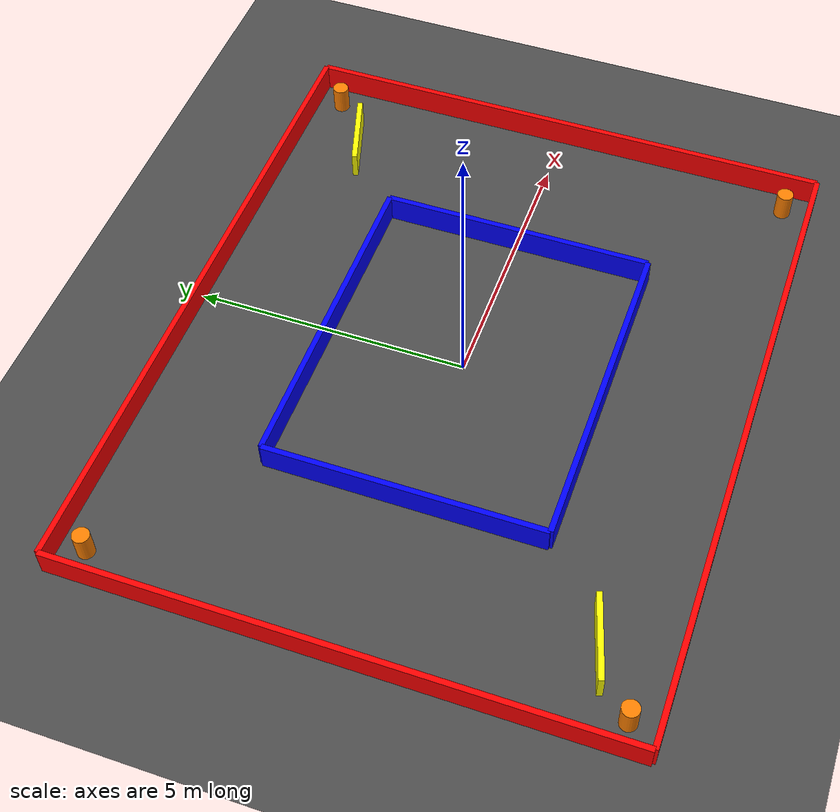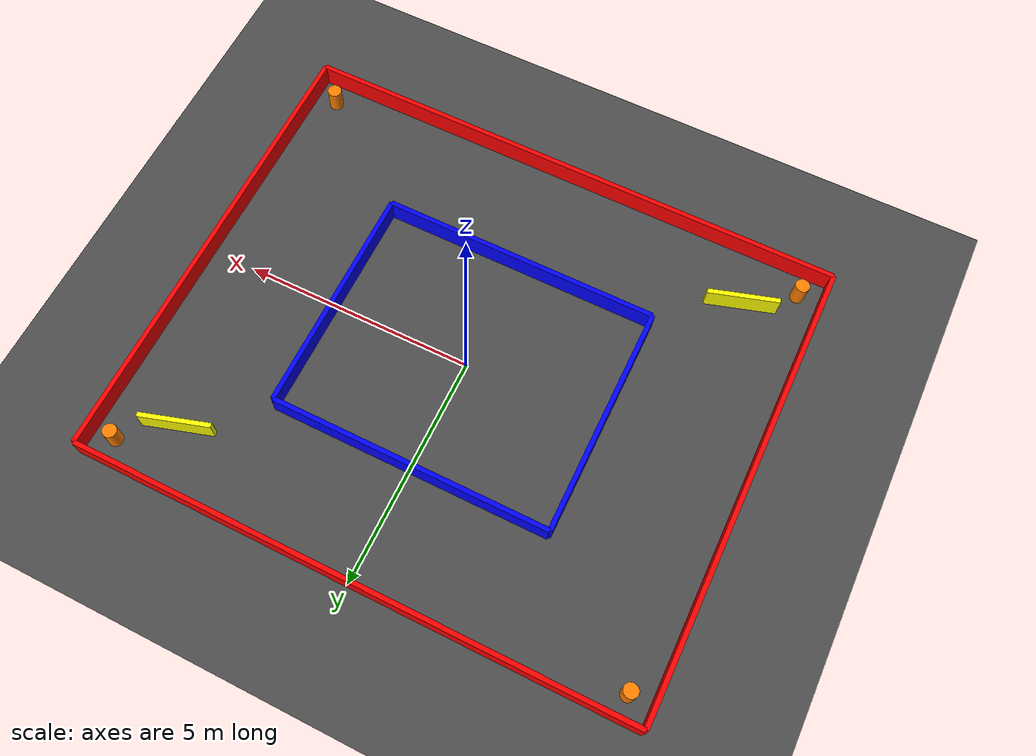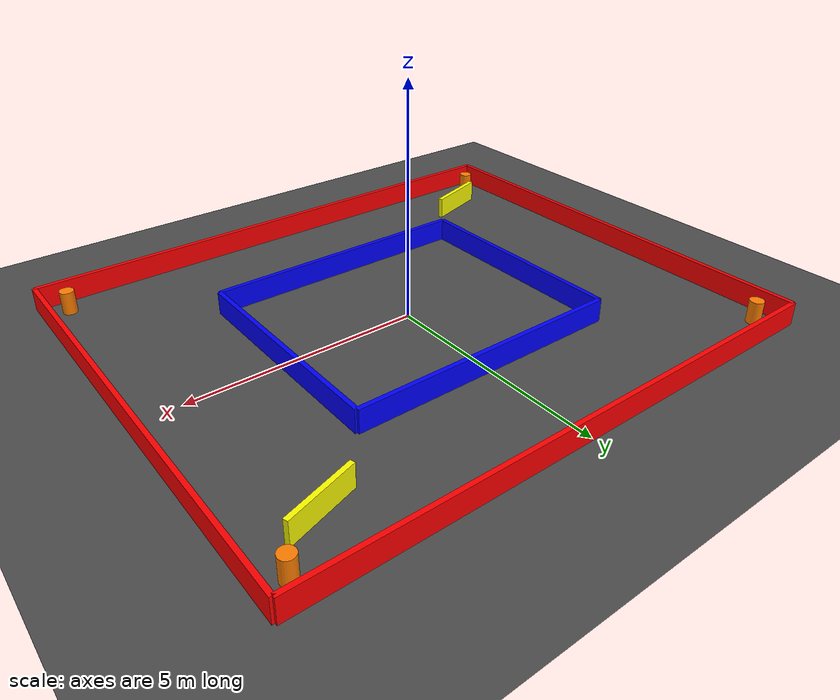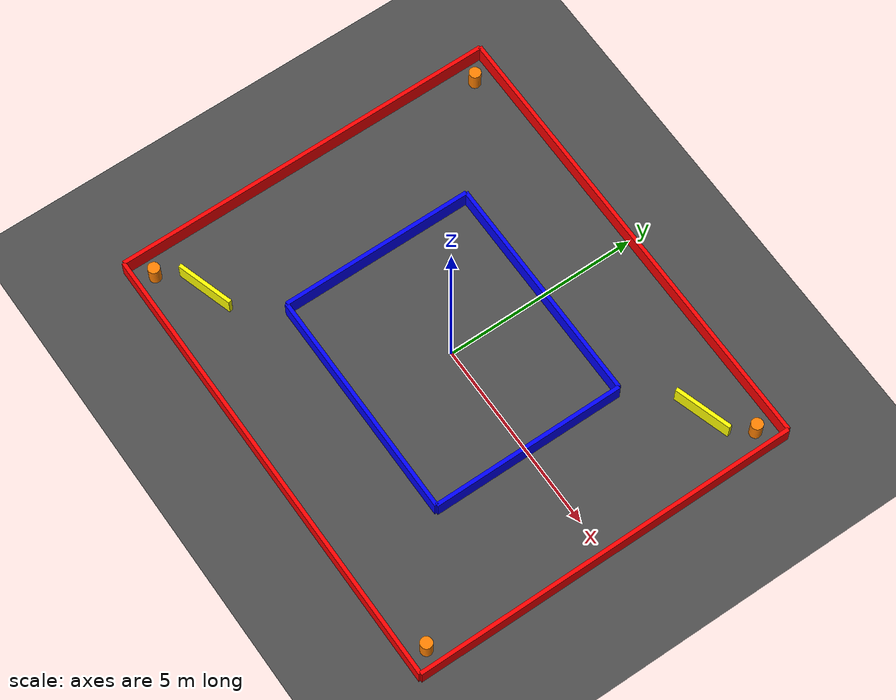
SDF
<?xml version="1.0" ?>
<sdf version="1.8">
  <world name="f1_circuit">

    <!-- Physics -->
    <physics name="1ms" type="ignored">
      <max_step_size>0.001</max_step_size>
      <real_time_factor>1.0</real_time_factor>
    </physics>

    <!-- Plugins -->
    <plugin filename="gz-sim-physics-system" name="gz::sim::systems::Physics"/>
    <plugin filename="gz-sim-user-commands-system" name="gz::sim::systems::UserCommands"/>
    <plugin filename="gz-sim-scene-broadcaster-system" name="gz::sim::systems::SceneBroadcaster"/>
    <plugin filename="gz-sim-sensors-system" name="gz::sim::systems::Sensors">
      <render_engine>ogre2</render_engine>
    </plugin>
    <plugin filename="gz-sim-imu-system" name="gz::sim::systems::Imu"/>
    <plugin filename="gz-sim-contact-system" name="gz::sim::systems::Contact"/>

    <!-- Lighting -->
    <light type="directional" name="sun">
      <cast_shadows>true</cast_shadows>
      <pose>0 0 10 0 0 0</pose>
      <diffuse>0.8 0.8 0.8 1</diffuse>
      <specular>0.2 0.2 0.2 1</specular>
      <direction>-0.5 0.1 -0.9</direction>
    </light>

    <!-- Ground Plane (Track surface) -->
    <model name="ground_plane">
      <static>true</static>
      <link name="link">
        <collision name="collision">
          <geometry>
            <plane>
              <normal>0 0 1</normal>
              <size>100 100</size>
            </plane>
          </geometry>
        </collision>
        <visual name="visual">
          <geometry>
            <plane>
              <normal>0 0 1</normal>
              <size>100 100</size>
            </plane>
          </geometry>
          <material>
            <ambient>0.3 0.3 0.3 1</ambient>
            <diffuse>0.3 0.3 0.3 1</diffuse>
          </material>
        </visual>
      </link>
    </model>

    <!-- F1 서킷 외곽 벽 -->

    <!-- 외곽 트랙 - 직선 구간 1 (상단) -->
    <model name="outer_straight_top">
      <static>true</static>
      <pose>0 5 0.25 0 0 0</pose>
      <link name="link">
        <collision name="collision">
          <geometry><box><size>12 0.1 0.5</size></box></geometry>
        </collision>
        <visual name="visual">
          <geometry><box><size>12 0.1 0.5</size></box></geometry>
          <material>
            <ambient>1 0 0 1</ambient>
            <diffuse>1 0 0 1</diffuse>
          </material>
        </visual>
      </link>
    </model>

    <!-- 외곽 - 직선 구간 2 (하단) -->
    <model name="outer_straight_bottom">
      <static>true</static>
      <pose>0 -5 0.25 0 0 0</pose>
      <link name="link">
        <collision name="collision">
          <geometry><box><size>12 0.1 0.5</size></box></geometry>
        </collision>
        <visual name="visual">
          <geometry><box><size>12 0.1 0.5</size></box></geometry>
          <material>
            <ambient>1 0 0 1</ambient>
            <diffuse>1 0 0 1</diffuse>
          </material>
        </visual>
      </link>
    </model>

    <!-- 외곽 - 좌측 -->
    <model name="outer_left">
      <static>true</static>
      <pose>-6 0 0.25 0 0 0</pose>
      <link name="link">
        <collision name="collision">
          <geometry><box><size>0.1 10 0.5</size></box></geometry>
        </collision>
        <visual name="visual">
          <geometry><box><size>0.1 10 0.5</size></box></geometry>
          <material>
            <ambient>1 0 0 1</ambient>
            <diffuse>1 0 0 1</diffuse>
          </material>
        </visual>
      </link>
    </model>

    <!-- 외곽 - 우측 -->
    <model name="outer_right">
      <static>true</static>
      <pose>6 0 0.25 0 0 0</pose>
      <link name="link">
        <collision name="collision">
          <geometry><box><size>0.1 10 0.5</size></box></geometry>
        </collision>
        <visual name="visual">
          <geometry><box><size>0.1 10 0.5</size></box></geometry>
          <material>
            <ambient>1 0 0 1</ambient>
            <diffuse>1 0 0 1</diffuse>
          </material>
        </visual>
      </link>
    </model>

    <!-- 내부 섬 (코스 중앙) -->

    <!-- 내부 섬 - 상단 -->
    <model name="inner_top">
      <static>true</static>
      <pose>0 2.5 0.25 0 0 0</pose>
      <link name="link">
        <collision name="collision">
          <geometry><box><size>6 0.1 0.5</size></box></geometry>
        </collision>
        <visual name="visual">
          <geometry><box><size>6 0.1 0.5</size></box></geometry>
          <material>
            <ambient>0 0 1 1</ambient>
            <diffuse>0 0 1 1</diffuse>
          </material>
        </visual>
      </link>
    </model>

    <!-- 내부 섬 - 하단 -->
    <model name="inner_bottom">
      <static>true</static>
      <pose>0 -2.5 0.25 0 0 0</pose>
      <link name="link">
        <collision name="collision">
          <geometry><box><size>6 0.1 0.5</size></box></geometry>
        </collision>
        <visual name="visual">
          <geometry><box><size>6 0.1 0.5</size></box></geometry>
          <material>
            <ambient>0 0 1 1</ambient>
            <diffuse>0 0 1 1</diffuse>
          </material>
        </visual>
      </link>
    </model>

    <!-- 내부 섬 - 좌측 -->
    <model name="inner_left">
      <static>true</static>
      <pose>-3 0 0.25 0 0 0</pose>
      <link name="link">
        <collision name="collision">
          <geometry><box><size>0.1 5 0.5</size></box></geometry>
        </collision>
        <visual name="visual">
          <geometry><box><size>0.1 5 0.5</size></box></geometry>
          <material>
            <ambient>0 0 1 1</ambient>
            <diffuse>0 0 1 1</diffuse>
          </material>
        </visual>
      </link>
    </model>

    <!-- 내부 섬 - 우측 -->
    <model name="inner_right">
      <static>true</static>
      <pose>3 0 0.25 0 0 0</pose>
      <link name="link">
        <collision name="collision">
          <geometry><box><size>0.1 5 0.5</size></box></geometry>
        </collision>
        <visual name="visual">
          <geometry><box><size>0.1 5 0.5</size></box></geometry>
          <material>
            <ambient>0 0 1 1</ambient>
            <diffuse>0 0 1 1</diffuse>
          </material>
        </visual>
      </link>
    </model>

    <!-- 시케인 (S자 코너) -->
    <model name="chicane_1">
      <static>true</static>
      <pose>4.5 3.75 0.25 0 0 0.3</pose>
      <link name="link">
        <collision name="collision">
          <geometry><box><size>1.5 0.1 0.5</size></box></geometry>
        </collision>
        <visual name="visual">
          <geometry><box><size>1.5 0.1 0.5</size></box></geometry>
          <material>
            <ambient>1 1 0 1</ambient>
            <diffuse>1 1 0 1</diffuse>
          </material>
        </visual>
      </link>
    </model>

    <model name="chicane_2">
      <static>true</static>
      <pose>-4.5 -3.75 0.25 0 0 0.3</pose>
      <link name="link">
        <collision name="collision">
          <geometry><box><size>1.5 0.1 0.5</size></box></geometry>
        </collision>
        <visual name="visual">
          <geometry><box><size>1.5 0.1 0.5</size></box></geometry>
          <material>
            <ambient>1 1 0 1</ambient>
            <diffuse>1 1 0 1</diffuse>
          </material>
        </visual>
      </link>
    </model>

    <!-- 코너 마커 (실린더) -->
    <model name="corner_marker_1">
      <static>true</static>
      <pose>5.5 4.5 0.25 0 0 0</pose>
      <link name="link">
        <collision name="collision">
          <geometry><cylinder><radius>0.15</radius><length>0.5</length></cylinder></geometry>
        </collision>
        <visual name="visual">
          <geometry><cylinder><radius>0.15</radius><length>0.5</length></cylinder></geometry>
          <material>
            <ambient>1 0.5 0 1</ambient>
            <diffuse>1 0.5 0 1</diffuse>
          </material>
        </visual>
      </link>
    </model>

    <model name="corner_marker_2">
      <static>true</static>
      <pose>-5.5 4.5 0.25 0 0 0</pose>
      <link name="link">
        <collision name="collision">
          <geometry><cylinder><radius>0.15</radius><length>0.5</length></cylinder></geometry>
        </collision>
        <visual name="visual">
          <geometry><cylinder><radius>0.15</radius><length>0.5</length></cylinder></geometry>
          <material>
            <ambient>1 0.5 0 1</ambient>
            <diffuse>1 0.5 0 1</diffuse>
          </material>
        </visual>
      </link>
    </model>

    <model name="corner_marker_3">
      <static>true</static>
      <pose>5.5 -4.5 0.25 0 0 0</pose>
      <link name="link">
        <collision name="collision">
          <geometry><cylinder><radius>0.15</radius><length>0.5</length></cylinder></geometry>
        </collision>
        <visual name="visual">
          <geometry><cylinder><radius>0.15</radius><length>0.5</length></cylinder></geometry>
          <material>
            <ambient>1 0.5 0 1</ambient>
            <diffuse>1 0.5 0 1</diffuse>
          </material>
        </visual>
      </link>
    </model>

    <model name="corner_marker_4">
      <static>true</static>
      <pose>-5.5 -4.5 0.25 0 0 0</pose>
      <link name="link">
        <collision name="collision">
          <geometry><cylinder><radius>0.15</radius><length>0.5</length></cylinder></geometry>
        </collision>
        <visual name="visual">
          <geometry><cylinder><radius>0.15</radius><length>0.5</length></cylinder></geometry>
          <material>
            <ambient>1 0.5 0 1</ambient>
            <diffuse>1 0.5 0 1</diffuse>
          </material>
        </visual>
      </link>
    </model>

  </world>
</sdf>
